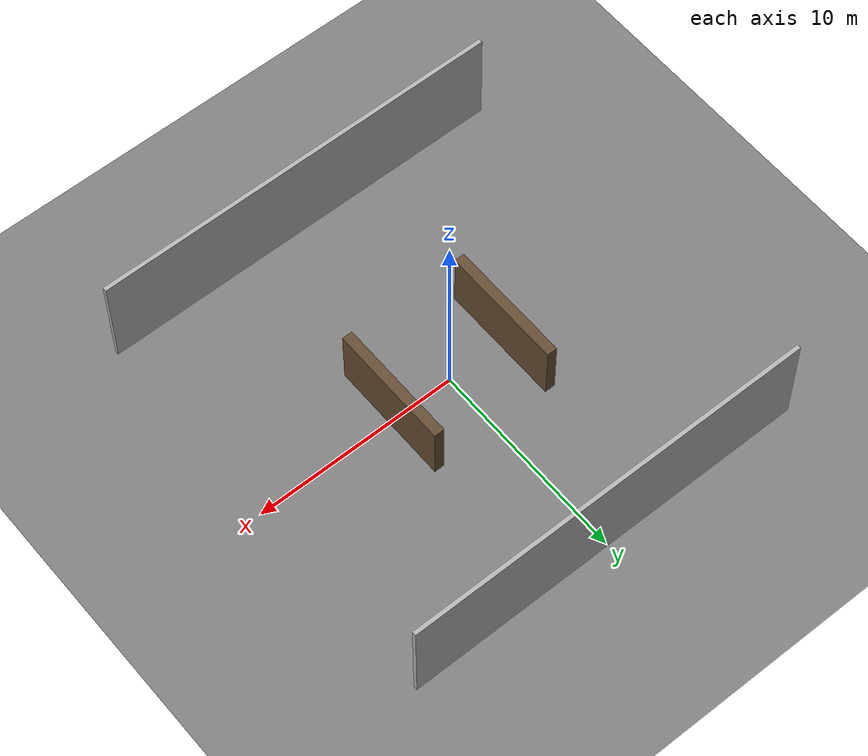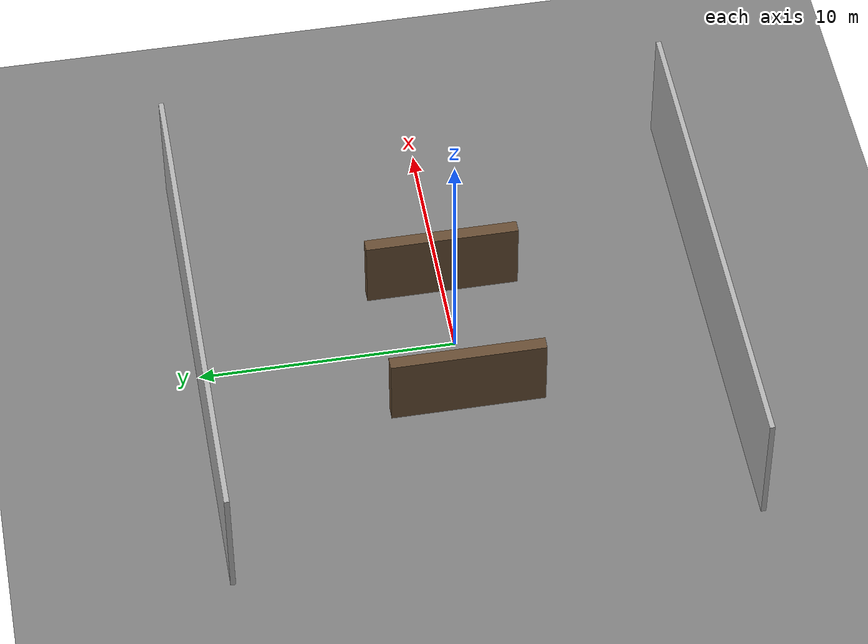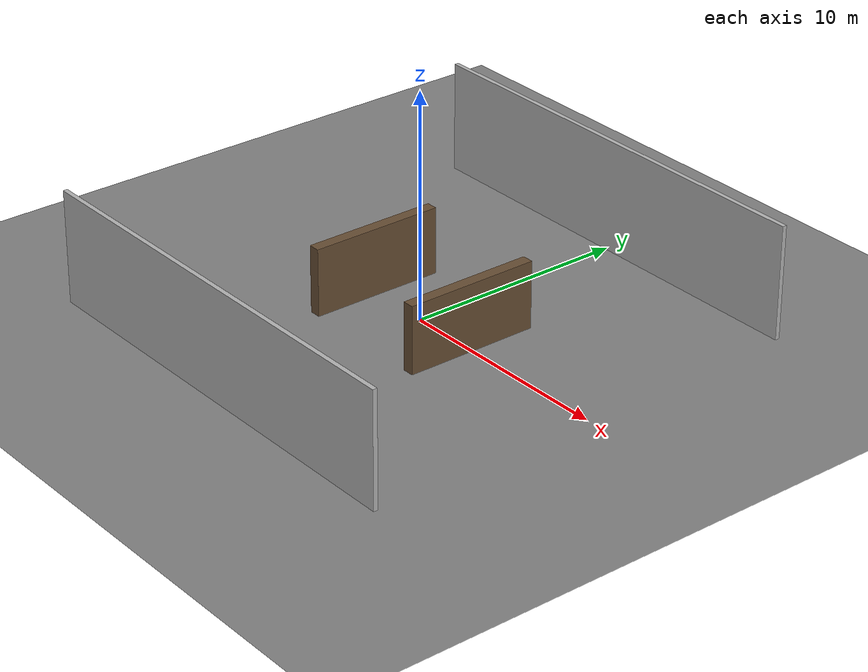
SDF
<?xml version="1.0" ?>
<!-- GPS-Denied Warehouse World — simple indoor environment for SITL testing -->
<sdf version="1.9">
  <world name="warehouse">
    <!-- Physics -->
    <physics type="ode">
      <max_step_size>0.004</max_step_size>
      <real_time_factor>1.0</real_time_factor>
    </physics>

    <!-- Lighting -->
    <light type="directional" name="sun">
      <cast_shadows>true</cast_shadows>
      <pose>0 0 10 0 0 0</pose>
      <diffuse>0.8 0.8 0.8 1</diffuse>
    </light>

    <!-- Ground plane -->
    <model name="ground_plane">
      <static>true</static>
      <link name="link">
        <collision name="collision">
          <geometry><plane><normal>0 0 1</normal><size>50 50</size></plane></geometry>
        </collision>
        <visual name="visual">
          <geometry><plane><normal>0 0 1</normal><size>50 50</size></plane></geometry>
          <material><ambient>0.5 0.5 0.5 1</ambient></material>
        </visual>
      </link>
    </model>

    <!-- Warehouse walls -->
    <model name="wall_north">
      <static>true</static>
      <pose>0 10 2.5 0 0 0</pose>
      <link name="link">
        <collision name="collision">
          <geometry><box><size>20 0.2 5</size></box></geometry>
        </collision>
        <visual name="visual">
          <geometry><box><size>20 0.2 5</size></box></geometry>
          <material><ambient>0.7 0.7 0.7 1</ambient></material>
        </visual>
      </link>
    </model>

    <model name="wall_south">
      <static>true</static>
      <pose>0 -10 2.5 0 0 0</pose>
      <link name="link">
        <collision name="collision">
          <geometry><box><size>20 0.2 5</size></box></geometry>
        </collision>
        <visual name="visual">
          <geometry><box><size>20 0.2 5</size></box></geometry>
          <material><ambient>0.7 0.7 0.7 1</ambient></material>
        </visual>
      </link>
    </model>

    <!-- Shelving units (obstacles) -->
    <model name="shelf_1">
      <static>true</static>
      <pose>3 0 1.5 0 0 0</pose>
      <link name="link">
        <collision name="collision">
          <geometry><box><size>0.5 6 3</size></box></geometry>
        </collision>
        <visual name="visual">
          <geometry><box><size>0.5 6 3</size></box></geometry>
          <material><ambient>0.4 0.3 0.2 1</ambient></material>
        </visual>
      </link>
    </model>

    <model name="shelf_2">
      <static>true</static>
      <pose>-3 0 1.5 0 0 0</pose>
      <link name="link">
        <collision name="collision">
          <geometry><box><size>0.5 6 3</size></box></geometry>
        </collision>
        <visual name="visual">
          <geometry><box><size>0.5 6 3</size></box></geometry>
          <material><ambient>0.4 0.3 0.2 1</ambient></material>
        </visual>
      </link>
    </model>

  </world>
</sdf>
